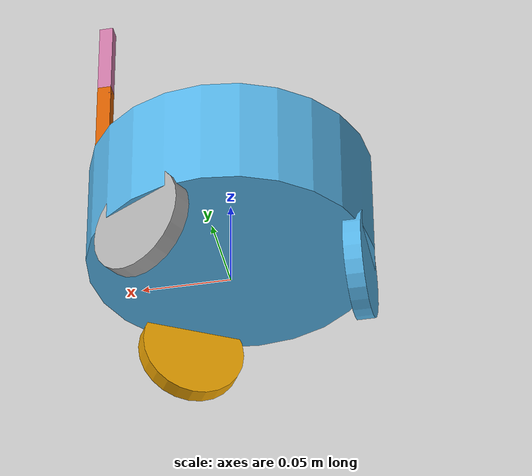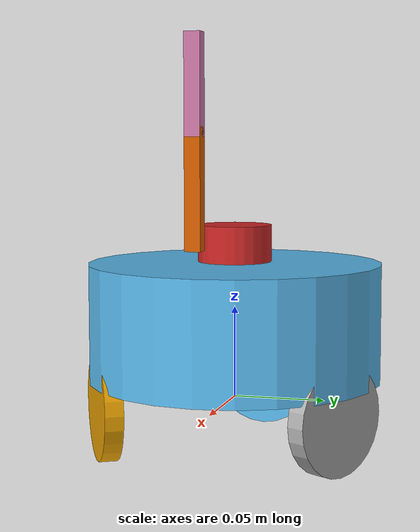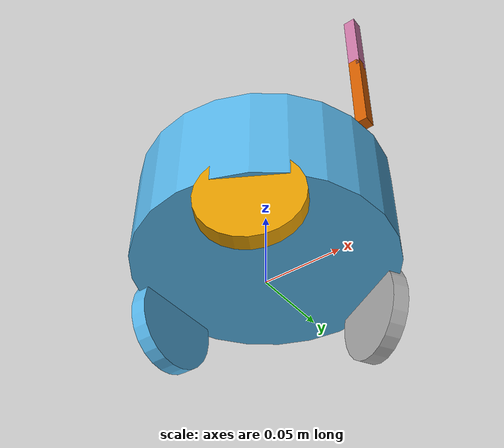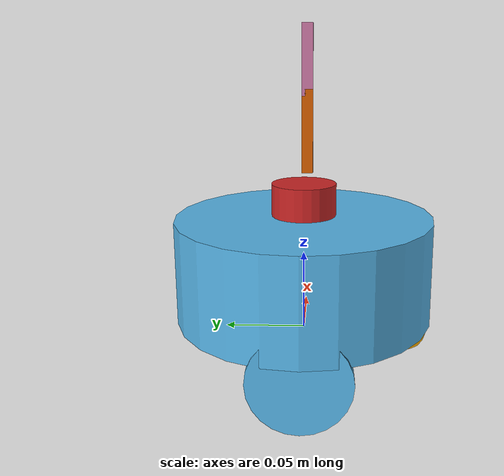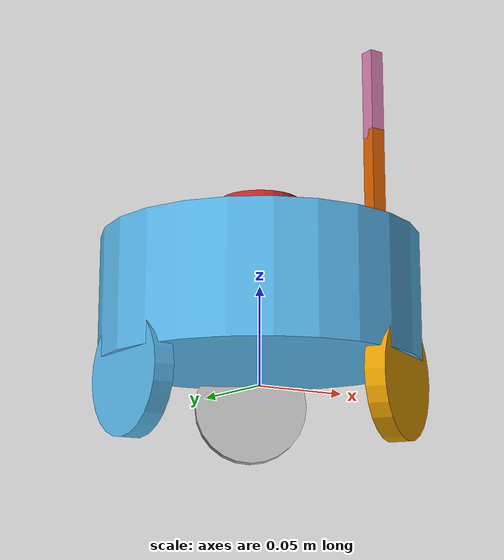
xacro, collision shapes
<?xml version="1.0"?>
<robot xmlns:xacro="http://www.ros.org/wiki/xacro" name="r_bot">

<xacro:include filename="new_core.xacro"/>
<xacro:include filename="inertial_macros.xacro"/>
<xacro:include filename="lidar.xacro"/>
<xacro:include filename="depth_camera.xacro"/>

</robot>

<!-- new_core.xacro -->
<robot xmlns:xacro="http://www.ros.org/wiki/xacro" name="hb_bot">

    <!-- ================= GLOBAL PARAMETERS ================= -->
    <xacro:property name="wheel_mass" value="0.05"/>
    <xacro:property name="wheel_radius" value="0.03"/>
    <xacro:property name="wheel_thickness" value="0.01"/>

    <!-- ================= INERTIA MACROS ================= -->

    <xacro:macro name="cylinder_inertia" params="m r h">
        <inertia
            ixx="${m*(3*r*r + h*h)/12}" ixy="0" ixz="0"
            iyy="${m*(3*r*r + h*h)/12}" iyz="0"
            izz="${m*r*r/2}" />
    </xacro:macro>

    <xacro:macro name="box_inertia" params="m x y z">
        <inertia
            ixx="${m*(y*y + z*z)/12}" ixy="0" ixz="0"
            iyy="${m*(x*x + z*z)/12}" iyz="0"
            izz="${m*(x*x + y*y)/12}" />
    </xacro:macro>

    <!-- ================= WHEEL MACRO ================= -->

    <xacro:macro name="rim_macro" params="name xyz rpy mass radius thickness">

        <link name="rim_${name}_link">

            <inertial>
                <origin xyz="0 0 0"/>
                <mass value="${mass}"/>
                <xacro:cylinder_inertia m="${mass}" r="${radius}" h="${thickness}"/>
            </inertial>

            <visual>
                <geometry>
                    <mesh filename="file:///home/deepanshu/My_ROS/src/r_bot/description/meshes/wheels.dae"/>
                </geometry>
            </visual>

            <collision>
                <geometry>
                    <cylinder radius="${radius}" length="${thickness}"/>
                </geometry>
            </collision>

        </link>

        <joint name="rim_${name}_joint" type="continuous">
            <parent link="base_link"/>
            <child link="rim_${name}_link"/>
            <axis xyz="0 0 1"/>
            <limit effort="1.0" velocity="10.0"/>
            <origin xyz="${xyz}" rpy="${rpy}"/>
        </joint>

    </xacro:macro>

    <!-- ================= BASE ================= -->

    <link name="root_link"/>

    <link name="base_link">

        <visual>
            <geometry>
                <mesh filename="file:///home/deepanshu/My_ROS/src/r_bot/description/meshes/hb_crystal.dae"/>
            </geometry>
        </visual>

        <collision>
            <origin xyz="0 0 0.042"/>
            <geometry>
                <cylinder length="0.064" radius="0.08"/>
            </geometry>
        </collision>

        <inertial>
            <origin xyz="0 0 0"/>
            <mass value="0.15"/>
            <xacro:cylinder_inertia m="0.15" r="0.074" h="0.03"/>
        </inertial>

    </link>

    <joint name="root_to_base" type="fixed">
        <parent link="root_link"/>
        <child link="base_link"/>
    </joint>

    <!-- BASE_FOOTPRINT LINK -->

    <joint name="base_footprint_joint" type="fixed">
        <parent link="base_link"/>
        <child link="base_footprint"/>
        <origin xyz="0 0 0" rpy="0 0 0"/>
    </joint>

    <link name="base_footprint">
    </link>

    <!-- ================= ARM ================= -->

    <link name="chassis_link"/>
    <link name="arm_root_link"/>

    <link name="arm_link_1">

        <visual>
            <geometry>
                <mesh filename="file:///home/deepanshu/My_ROS/src/r_bot/description/meshes/arm_link.dae"/>
            </geometry>
        </visual>

        <collision>
            <origin xyz="0 0 0.02472"/>
            <geometry>
                <box size="0.008 0.008 0.06"/>
            </geometry>
        </collision>

        <inertial>
            <mass value="0.001"/>
            <xacro:cylinder_inertia m="0.001" r="0.025" h="0.05"/>
        </inertial>

    </link>

    <link name="arm_link_2">

        <visual>
            <geometry>
                <mesh filename="file:///home/deepanshu/My_ROS/src/r_bot/description/meshes/arm_elbow.dae"/>
            </geometry>
        </visual>

        <collision>
            <origin xyz="0 0 0.025"/>
            <geometry>
                <box size="0.008 0.008 0.05"/>
            </geometry>
        </collision>

        <inertial>
            <mass value="0.001"/>
            <xacro:cylinder_inertia m="0.001" r="0.025" h="0.05"/>
        </inertial>

    </link>

    <!-- Fixed arm chain -->
    <joint name="base_to_chassis" type="fixed">
        <parent link="base_link"/>
        <child link="chassis_link"/>
        <origin xyz="0 0 0.0795"/>
    </joint>

    <joint name="chassis_to_arm_base" type="fixed">
        <parent link="chassis_link"/>
        <child link="arm_root_link"/>
        <origin xyz="0.075 0 0"/>
    </joint>

    <joint name="arm_base" type="fixed">
        <parent link="arm_root_link"/>
        <child link="arm_link_1"/>
        <origin xyz="0 0 0.013"/>
    </joint>

    <joint name="arm_elbow" type="fixed">
        <parent link="arm_link_1"/>
        <child link="arm_link_2"/>
        <origin xyz="0 0 0.05"/>
    </joint>

    <!-- ================= WHEELS ================= -->

    <xacro:rim_macro
        name="left"
        xyz="0.03600001399230441 0.06235382099401676 -0.001"
        rpy="1.570796326794896 0 -0.523599"
        mass="${wheel_mass}"
        radius="${wheel_radius}"
        thickness="${wheel_thickness}"/>

    <xacro:rim_macro
        name="right"
        xyz="0.03600001399230441 -0.06235382099401676 -0.001"
        rpy="1.570796326794896 0 0.523599"
        mass="${wheel_mass}"
        radius="${wheel_radius}"
        thickness="${wheel_thickness}"/>

    <xacro:rim_macro
        name="back"
        xyz="-0.072 0 0"
        rpy="1.570796326794896 0 1.570796326794896"
        mass="${wheel_mass}"
        radius="${wheel_radius}"
        thickness="${wheel_thickness}"/>

    <!-- ================= CONTROL ================= -->

    <ros2_control name="RobotSystem" type="system">

        <hardware>
            <plugin>gazebo_ros2_control/GazeboSystem</plugin>
        </hardware>

        <joint name="rim_left_joint">
            <command_interface name="velocity"/>
            <state_interface name="position"/>
            <state_interface name="velocity"/>
        </joint>

        <joint name="rim_right_joint">
            <command_interface name="velocity"/>
            <state_interface name="position"/>
            <state_interface name="velocity"/>
        </joint>

        <joint name="rim_back_joint">
            <command_interface name="velocity"/>
            <state_interface name="position"/>
            <state_interface name="velocity"/>
        </joint>

    </ros2_control>

    <!-- ================= GAZEBO ================= -->

    <gazebo>
        <plugin name="gazebo_ros2_control" filename="libgazebo_ros2_control.so">
            <parameters>/home/deepanshu/My_ROS/src/r_bot/config/Control.yaml</parameters>
        </plugin>
    </gazebo>

</robot>

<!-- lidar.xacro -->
<robot xmlns:xacro="http://www.ros.org/wiki/xacro" >

    <joint name="laser_joint" type="fixed">
        <parent link="chassis_link"/>
        <child link="laser_frame"/>
        <origin xyz="0.0 0 0.0053" rpy="0 0 0"/>
    </joint>

    <link name="laser_frame">
        <visual>
            <geometry>
                <cylinder radius="0.02" length="0.02"/>
            </geometry>
            <material name="red"/>
        </visual>
        <collision>
            <geometry>
                <cylinder radius="0.02" length="0.02"/>
            </geometry>
        </collision>
        <xacro:inertial_cylinder mass="0.1" length="0.02" radius="0.02">
            <origin xyz="0 0 0" rpy="0 0 0"/>
        </xacro:inertial_cylinder>
    </link>

    <gazebo reference="laser_frame">
        <material>Gazebo/Red</material>

        <sensor name="laser" type="ray">
            <pose> 0 0 0 0 0 0 </pose>
            <visualize>true</visualize>
            <update_rate>10</update_rate>
            <ray>
                <scan>
                    <horizontal>
                        <samples>360</samples>
                        <min_angle>-3.14</min_angle>
                        <max_angle>3.14</max_angle>
                    </horizontal>
                </scan>
                <range>
                    <min>0.3</min>
                    <max>12</max>
                </range>
            </ray>
            <plugin name="laser_controller" filename="libgazebo_ros_ray_sensor.so">
                <ros>
                    <argument>~/out:=scan</argument>
                </ros>
                <output_type>sensor_msgs/LaserScan</output_type>
                <frame_name>laser_frame</frame_name>
            </plugin>
        </sensor>
    </gazebo>

</robot>

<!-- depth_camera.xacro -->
<robot xmlns:xacro="http://www.ros.org/wiki/xacro" >

    <joint name="camera_joint" type="fixed">
        <parent link="chassis_link"/>
        <child link="camera_link"/>
        <origin xyz="0.305 0 0.2" rpy="0 0 0"/>
    </joint>

    <link name="camera_link">
        <visual>
            <geometry>
                <box size="0.010 0.03 0.03"/>
            </geometry>
            <material name="red"/>
        </visual>
    </link>

    <joint name="camera_optical_joint" type="fixed">
        <parent link="camera_link"/>
        <child link="camera_link_optical"/>
        <origin xyz="0 0 0" rpy="${-pi/2} 0 ${-pi/2}"/>
    </joint>

    <link name="camera_link_optical"></link>

    <gazebo reference="camera_link">
        <material>Gazebo/Red</material>

        <sensor name="camera" type="depth">
            <pose> 0 0 0 0 0 0 </pose>
            <visualize>true</visualize>
            <update_rate>10</update_rate>
            <camera>
                <horizontal_fov>1.089</horizontal_fov>
                <image>
                    <format>B8G8R8</format>
                    <width>640</width>
                    <height>480</height>
                </image>
                <clip>
                    <near>0.05</near>
                    <far>8.0</far>
                </clip>
            </camera>
            <plugin name="camera_controller" filename="libgazebo_ros_camera.so">
                <frame_name>camera_link_optical</frame_name>
                <min_depth>0.1</min_depth>
                <max_depth>100.0</max_depth>
            </plugin>
        </sensor>
    </gazebo>

</robot>
